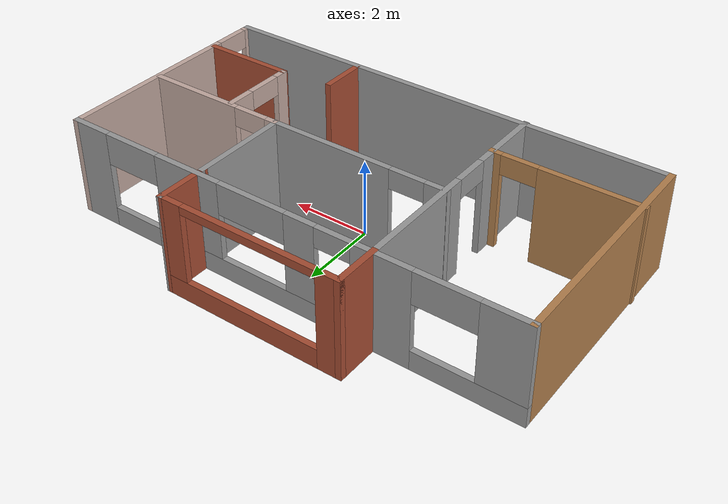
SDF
<?xml version='1.0'?>
<sdf version='1.7'>
  <model name='model'>
    <pose>-0.072799 0.657395 0 0 -0 0</pose>
    <link name='Wall_0'>
      <pose>0.019799 2.41161 0 0 -0 3.14159</pose>
      <visual name='Wall_0_Visual_0'>
        <pose>-5.46206 0 1.25 0 -0 0</pose>
        <geometry>
          <box>
            <size>1.07588 0.15 2.5</size>
          </box>
        </geometry>
        <material>
          <script>
            <uri>file://media/materials/scripts/gazebo.material</uri>
            <name>Gazebo/Grey</name>
          </script>
          <ambient>1 1 1 1</ambient>
        </material>
        <meta>
          <layer>0</layer>
        </meta>
      </visual>
      <collision name='Wall_0_Collision_0'>
        <geometry>
          <box>
            <size>1.07588 0.15 2.5</size>
          </box>
        </geometry>
        <pose>-5.46206 0 1.25 0 -0 0</pose>
      </collision>
      <visual name='Wall_0_Visual_1'>
        <pose>2.60195 0 1.25 0 -0 0</pose>
        <geometry>
          <box>
            <size>1.45849 0.15 2.5</size>
          </box>
        </geometry>
        <material>
          <script>
            <uri>file://media/materials/scripts/gazebo.material</uri>
            <name>Gazebo/Grey</name>
          </script>
          <ambient>1 1 1 1</ambient>
        </material>
        <meta>
          <layer>0</layer>
        </meta>
      </visual>
      <collision name='Wall_0_Collision_1'>
        <geometry>
          <box>
            <size>1.45849 0.15 2.5</size>
          </box>
        </geometry>
        <pose>2.60195 0 1.25 0 -0 0</pose>
      </collision>
      <visual name='Wall_0_Visual_2'>
        <pose>-1.97571 0 0.25 0 -0 0</pose>
        <geometry>
          <box>
            <size>5.89682 0.15 0.5</size>
          </box>
        </geometry>
        <material>
          <script>
            <uri>file://media/materials/scripts/gazebo.material</uri>
            <name>Gazebo/Grey</name>
          </script>
          <ambient>1 1 1 1</ambient>
        </material>
        <meta>
          <layer>0</layer>
        </meta>
      </visual>
      <collision name='Wall_0_Collision_2'>
        <geometry>
          <box>
            <size>5.89682 0.15 0.5</size>
          </box>
        </geometry>
        <pose>-1.97571 0 0.25 0 -0 0</pose>
      </collision>
      <visual name='Wall_0_Visual_3'>
        <pose>4.6656 0 0.25 0 -0 0</pose>
        <geometry>
          <box>
            <size>2.66881 0.15 0.5</size>
          </box>
        </geometry>
        <material>
          <script>
            <uri>file://media/materials/scripts/gazebo.material</uri>
            <name>Gazebo/Grey</name>
          </script>
          <ambient>1 1 1 1</ambient>
        </material>
        <meta>
          <layer>0</layer>
        </meta>
      </visual>
      <collision name='Wall_0_Collision_3'>
        <geometry>
          <box>
            <size>2.66881 0.15 0.5</size>
          </box>
        </geometry>
        <pose>4.6656 0 0.25 0 -0 0</pose>
      </collision>
      <visual name='Wall_0_Visual_4'>
        <pose>-2.5176 0 1.5 0 -0 0</pose>
        <geometry>
          <box>
            <size>1.81303 0.15 2</size>
          </box>
        </geometry>
        <material>
          <script>
            <uri>file://media/materials/scripts/gazebo.material</uri>
            <name>Gazebo/Grey</name>
          </script>
          <ambient>1 1 1 1</ambient>
        </material>
        <meta>
          <layer>0</layer>
        </meta>
      </visual>
      <collision name='Wall_0_Collision_4'>
        <geometry>
          <box>
            <size>1.81303 0.15 2</size>
          </box>
        </geometry>
        <pose>-2.5176 0 1.5 0 -0 0</pose>
      </collision>
      <visual name='Wall_0_Visual_5'>
        <pose>0.580808 0 1.5 0 -0 0</pose>
        <geometry>
          <box>
            <size>0.783788 0.15 2</size>
          </box>
        </geometry>
        <material>
          <script>
            <uri>file://media/materials/scripts/gazebo.material</uri>
            <name>Gazebo/Grey</name>
          </script>
          <ambient>1 1 1 1</ambient>
        </material>
        <meta>
          <layer>0</layer>
        </meta>
      </visual>
      <collision name='Wall_0_Collision_5'>
        <geometry>
          <box>
            <size>0.783788 0.15 2</size>
          </box>
        </geometry>
        <pose>0.580808 0 1.5 0 -0 0</pose>
      </collision>
      <visual name='Wall_0_Visual_6'>
        <pose>0.580808 0 1.5 0 -0 0</pose>
        <geometry>
          <box>
            <size>0.783788 0.15 2</size>
          </box>
        </geometry>
        <material>
          <script>
            <uri>file://media/materials/scripts/gazebo.material</uri>
            <name>Gazebo/Grey</name>
          </script>
          <ambient>1 1 1 1</ambient>
        </material>
        <meta>
          <layer>0</layer>
        </meta>
      </visual>
      <collision name='Wall_0_Collision_6'>
        <geometry>
          <box>
            <size>0.783788 0.15 2</size>
          </box>
        </geometry>
        <pose>0.580808 0 1.5 0 -0 0</pose>
      </collision>
      <visual name='Wall_0_Visual_7'>
        <pose>5.4156 0 1.5 0 -0 0</pose>
        <geometry>
          <box>
            <size>1.16881 0.15 2</size>
          </box>
        </geometry>
        <material>
          <script>
            <uri>file://media/materials/scripts/gazebo.material</uri>
            <name>Gazebo/Grey</name>
          </script>
          <ambient>1 1 1 1</ambient>
        </material>
        <meta>
          <layer>0</layer>
        </meta>
      </visual>
      <collision name='Wall_0_Collision_7'>
        <geometry>
          <box>
            <size>1.16881 0.15 2</size>
          </box>
        </geometry>
        <pose>5.4156 0 1.5 0 -0 0</pose>
      </collision>
      <visual name='Wall_0_Visual_8'>
        <pose>-4.17412 0 2.1 0 -0 0</pose>
        <geometry>
          <box>
            <size>1.5 0.15 0.8</size>
          </box>
        </geometry>
        <material>
          <script>
            <uri>file://media/materials/scripts/gazebo.material</uri>
            <name>Gazebo/Grey</name>
          </script>
          <ambient>1 1 1 1</ambient>
        </material>
        <meta>
          <layer>0</layer>
        </meta>
      </visual>
      <collision name='Wall_0_Collision_8'>
        <geometry>
          <box>
            <size>1.5 0.15 0.8</size>
          </box>
        </geometry>
        <pose>-4.17412 0 2.1 0 -0 0</pose>
      </collision>
      <visual name='Wall_0_Visual_9'>
        <pose>4.08119 0 2.1 0 -0 0</pose>
        <geometry>
          <box>
            <size>1.5 0.15 0.8</size>
          </box>
        </geometry>
        <material>
          <script>
            <uri>file://media/materials/scripts/gazebo.material</uri>
            <name>Gazebo/Grey</name>
          </script>
          <ambient>1 1 1 1</ambient>
        </material>
        <meta>
          <layer>0</layer>
        </meta>
      </visual>
      <collision name='Wall_0_Collision_9'>
        <geometry>
          <box>
            <size>1.5 0.15 0.8</size>
          </box>
        </geometry>
        <pose>4.08119 0 2.1 0 -0 0</pose>
      </collision>
      <visual name='Wall_0_Visual_10'>
        <pose>-0.711086 0 2.1 0 -0 0</pose>
        <geometry>
          <box>
            <size>1.8 0.15 0.8</size>
          </box>
        </geometry>
        <material>
          <script>
            <uri>file://media/materials/scripts/gazebo.material</uri>
            <name>Gazebo/Grey</name>
          </script>
          <ambient>1 1 1 1</ambient>
        </material>
        <meta>
          <layer>0</layer>
        </meta>
      </visual>
      <collision name='Wall_0_Collision_10'>
        <geometry>
          <box>
            <size>1.8 0.15 0.8</size>
          </box>
        </geometry>
        <pose>-0.711086 0 2.1 0 -0 0</pose>
      </collision>
      <visual name='Wall_0_Visual_11'>
        <pose>1.4227 0 2.25 0 -0 0</pose>
        <geometry>
          <box>
            <size>0.9 0.15 0.5</size>
          </box>
        </geometry>
        <material>
          <script>
            <uri>file://media/materials/scripts/gazebo.material</uri>
            <name>Gazebo/Grey</name>
          </script>
          <ambient>1 1 1 1</ambient>
        </material>
        <meta>
          <layer>0</layer>
        </meta>
      </visual>
      <collision name='Wall_0_Collision_11'>
        <geometry>
          <box>
            <size>0.9 0.15 0.5</size>
          </box>
        </geometry>
        <pose>1.4227 0 2.25 0 -0 0</pose>
      </collision>
      <visual name='Wall_0_Visual_12'>
        <pose>1.4227 0 2.25 0 -0 0</pose>
        <geometry>
          <box>
            <size>0.9 0.15 0.5</size>
          </box>
        </geometry>
        <material>
          <script>
            <uri>file://media/materials/scripts/gazebo.material</uri>
            <name>Gazebo/Grey</name>
          </script>
          <ambient>1 1 1 1</ambient>
        </material>
        <meta>
          <layer>0</layer>
        </meta>
      </visual>
      <collision name='Wall_0_Collision_12'>
        <geometry>
          <box>
            <size>0.9 0.15 0.5</size>
          </box>
        </geometry>
        <pose>1.4227 0 2.25 0 -0 0</pose>
      </collision>
    </link>
    <link name='Wall_15'>
      <pose>3.63468 -1.16614 0 0 -0 -1.5708</pose>
      <visual name='Wall_15_Visual_0'>
        <pose>-0.627818 0 1.25 0 -0 0</pose>
        <geometry>
          <box>
            <size>0.744364 0.15 2.5</size>
          </box>
        </geometry>
        <material>
          <script>
            <uri>file://media/materials/scripts/gazebo.material</uri>
            <name>Gazebo/Grey</name>
          </script>
          <ambient>0.760784 0.662745 0.627451 1</ambient>
        </material>
        <meta>
          <layer>0</layer>
        </meta>
      </visual>
      <collision name='Wall_15_Collision_0'>
        <geometry>
          <box>
            <size>0.744364 0.15 2.5</size>
          </box>
        </geometry>
        <pose>-0.627818 0 1.25 0 -0 0</pose>
      </collision>
      <visual name='Wall_15_Visual_1'>
        <pose>0.822182 0 1.25 0 -0 0</pose>
        <geometry>
          <box>
            <size>0.355636 0.15 2.5</size>
          </box>
        </geometry>
        <material>
          <script>
            <uri>file://media/materials/scripts/gazebo.material</uri>
            <name>Gazebo/Grey</name>
          </script>
          <ambient>0.760784 0.662745 0.627451 1</ambient>
        </material>
        <meta>
          <layer>0</layer>
        </meta>
      </visual>
      <collision name='Wall_15_Collision_1'>
        <geometry>
          <box>
            <size>0.355636 0.15 2.5</size>
          </box>
        </geometry>
        <pose>0.822182 0 1.25 0 -0 0</pose>
      </collision>
      <visual name='Wall_15_Visual_2'>
        <pose>0.194364 0 2.25 0 -0 0</pose>
        <geometry>
          <box>
            <size>0.9 0.15 0.5</size>
          </box>
        </geometry>
        <material>
          <script>
            <uri>file://media/materials/scripts/gazebo.material</uri>
            <name>Gazebo/Grey</name>
          </script>
          <ambient>0.760784 0.662745 0.627451 1</ambient>
        </material>
        <meta>
          <layer>0</layer>
        </meta>
      </visual>
      <collision name='Wall_15_Collision_2'>
        <geometry>
          <box>
            <size>0.9 0.15 0.5</size>
          </box>
        </geometry>
        <pose>0.194364 0 2.25 0 -0 0</pose>
      </collision>
    </link>
    <link name='Wall_16'>
      <collision name='Wall_16_Collision'>
        <geometry>
          <box>
            <size>2.45988 0.15 2.5</size>
          </box>
        </geometry>
        <pose>0 0 1.25 0 -0 0</pose>
      </collision>
      <visual name='Wall_16_Visual'>
        <pose>0 0 1.25 0 -0 0</pose>
        <geometry>
          <box>
            <size>2.45988 0.15 2.5</size>
          </box>
        </geometry>
        <material>
          <script>
            <uri>file://media/materials/scripts/gazebo.material</uri>
            <name>Gazebo/Bricks</name>
          </script>
          <ambient>1 1 1 1</ambient>
        </material>
        <meta>
          <layer>0</layer>
        </meta>
      </visual>
      <pose>4.78962 -2.12612 0 0 -0 0</pose>
    </link>
    <link name='Wall_2'>
      <collision name='Wall_2_Collision'>
        <geometry>
          <box>
            <size>6 0.15 2.5</size>
          </box>
        </geometry>
        <pose>0 0 1.25 0 -0 0</pose>
      </collision>
      <visual name='Wall_2_Visual'>
        <pose>0 0 1.25 0 -0 0</pose>
        <geometry>
          <box>
            <size>6 0.15 2.5</size>
          </box>
        </geometry>
        <material>
          <script>
            <uri>file://media/materials/scripts/gazebo.material</uri>
            <name>Gazebo/Wood</name>
          </script>
          <ambient>1 1 1 1</ambient>
        </material>
        <meta>
          <layer>0</layer>
        </meta>
      </visual>
      <pose>-5.9052 -0.513395 0 0 -0 -1.5708</pose>
    </link>
    <link name='Wall_24'>
      <collision name='Wall_24_Collision'>
        <geometry>
          <box>
            <size>2.5 0.15 2.5</size>
          </box>
        </geometry>
        <pose>0 0 1.25 0 -0 0</pose>
      </collision>
      <visual name='Wall_24_Visual'>
        <pose>0 0 1.25 0 -0 0</pose>
        <geometry>
          <box>
            <size>2.5 0.15 2.5</size>
          </box>
        </geometry>
        <material>
          <script>
            <uri>file://media/materials/scripts/gazebo.material</uri>
            <name>Gazebo/Grey</name>
          </script>
          <ambient>1 1 1 1</ambient>
        </material>
        <meta>
          <layer>0</layer>
        </meta>
      </visual>
      <pose>2.23564 1.06753 0 0 -0 -1.57093</pose>
    </link>
    <link name='Wall_26'>
      <collision name='Wall_26_Collision'>
        <geometry>
          <box>
            <size>1.25 0.15 2.5</size>
          </box>
        </geometry>
        <pose>0 0 1.25 0 -0 0</pose>
      </collision>
      <visual name='Wall_26_Visual'>
        <pose>0 0 1.25 0 -0 0</pose>
        <geometry>
          <box>
            <size>1.25 0.15 2.5</size>
          </box>
        </geometry>
        <material>
          <script>
            <uri>file://media/materials/scripts/gazebo.material</uri>
            <name>Gazebo/Bricks</name>
          </script>
          <ambient>1 1 1 1</ambient>
        </material>
        <meta>
          <layer>0</layer>
        </meta>
      </visual>
      <pose>2.34042 -2.86011 0 0 -0 -1.5708</pose>
    </link>
    <link name='Wall_28'>
      <collision name='Wall_28_Collision'>
        <geometry>
          <box>
            <size>1.25 0.15 2.5</size>
          </box>
        </geometry>
        <pose>0 0 1.25 0 -0 0</pose>
      </collision>
      <visual name='Wall_28_Visual'>
        <pose>0 0 1.25 0 -0 0</pose>
        <geometry>
          <box>
            <size>1.25 0.15 2.5</size>
          </box>
        </geometry>
        <material>
          <script>
            <uri>file://media/materials/scripts/gazebo.material</uri>
            <name>Gazebo/Bricks</name>
          </script>
          <ambient>1 1 1 1</ambient>
        </material>
        <meta>
          <layer>0</layer>
        </meta>
      </visual>
      <pose>-2.3542 2.92461 0 0 -0 1.5708</pose>
    </link>
    <link name='Wall_29'>
      <pose>-0.054201 3.4746 0 0 -0 0</pose>
      <visual name='Wall_29_Visual_0'>
        <pose>-2.0721 0 1.25 0 -0 0</pose>
        <geometry>
          <box>
            <size>0.605802 0.15 2.5</size>
          </box>
        </geometry>
        <material>
          <script>
            <uri>file://media/materials/scripts/gazebo.material</uri>
            <name>Gazebo/Bricks</name>
          </script>
          <ambient>1 1 1 1</ambient>
        </material>
        <meta>
          <layer>0</layer>
        </meta>
      </visual>
      <collision name='Wall_29_Collision_0'>
        <geometry>
          <box>
            <size>0.605802 0.15 2.5</size>
          </box>
        </geometry>
        <pose>-2.0721 0 1.25 0 -0 0</pose>
      </collision>
      <visual name='Wall_29_Visual_1'>
        <pose>0.302901 0 0.25 0 -0 0</pose>
        <geometry>
          <box>
            <size>4.1442 0.15 0.5</size>
          </box>
        </geometry>
        <material>
          <script>
            <uri>file://media/materials/scripts/gazebo.material</uri>
            <name>Gazebo/Bricks</name>
          </script>
          <ambient>1 1 1 1</ambient>
        </material>
        <meta>
          <layer>0</layer>
        </meta>
      </visual>
      <collision name='Wall_29_Collision_1'>
        <geometry>
          <box>
            <size>4.1442 0.15 0.5</size>
          </box>
        </geometry>
        <pose>0.302901 0 0.25 0 -0 0</pose>
      </collision>
      <visual name='Wall_29_Visual_2'>
        <pose>2.0529 0 1.5 0 -0 0</pose>
        <geometry>
          <box>
            <size>0.644198 0.15 2</size>
          </box>
        </geometry>
        <material>
          <script>
            <uri>file://media/materials/scripts/gazebo.material</uri>
            <name>Gazebo/Bricks</name>
          </script>
          <ambient>1 1 1 1</ambient>
        </material>
        <meta>
          <layer>0</layer>
        </meta>
      </visual>
      <collision name='Wall_29_Collision_2'>
        <geometry>
          <box>
            <size>0.644198 0.15 2</size>
          </box>
        </geometry>
        <pose>2.0529 0 1.5 0 -0 0</pose>
      </collision>
      <visual name='Wall_29_Visual_3'>
        <pose>-0.019198 0 2.4 0 -0 0</pose>
        <geometry>
          <box>
            <size>3.5 0.15 0.2</size>
          </box>
        </geometry>
        <material>
          <script>
            <uri>file://media/materials/scripts/gazebo.material</uri>
            <name>Gazebo/Bricks</name>
          </script>
          <ambient>1 1 1 1</ambient>
        </material>
        <meta>
          <layer>0</layer>
        </meta>
      </visual>
      <collision name='Wall_29_Collision_3'>
        <geometry>
          <box>
            <size>3.5 0.15 0.2</size>
          </box>
        </geometry>
        <pose>-0.019198 0 2.4 0 -0 0</pose>
      </collision>
    </link>
    <link name='Wall_3'>
      <collision name='Wall_3_Collision'>
        <geometry>
          <box>
            <size>12 0.15 2.5</size>
          </box>
        </geometry>
        <pose>0 0 1.25 0 -0 0</pose>
      </collision>
      <visual name='Wall_3_Visual'>
        <pose>0 0 1.25 0 -0 0</pose>
        <geometry>
          <box>
            <size>12 0.15 2.5</size>
          </box>
        </geometry>
        <material>
          <script>
            <uri>file://media/materials/scripts/gazebo.material</uri>
            <name>Gazebo/Grey</name>
          </script>
          <ambient>1 1 1 1</ambient>
        </material>
        <meta>
          <layer>0</layer>
        </meta>
      </visual>
      <pose>0.019799 -3.43839 0 0 -0 0</pose>
    </link>
    <link name='Wall_30'>
      <collision name='Wall_30_Collision'>
        <geometry>
          <box>
            <size>0.15 0.15 2.5</size>
          </box>
        </geometry>
        <pose>0 0 1.25 0 -0 0</pose>
      </collision>
      <visual name='Wall_30_Visual'>
        <pose>0 0 1.25 0 -0 0</pose>
        <geometry>
          <box>
            <size>0.15 0.15 2.5</size>
          </box>
        </geometry>
        <material>
          <script>
            <uri>file://media/materials/scripts/gazebo.material</uri>
            <name>Gazebo/Grey</name>
          </script>
          <ambient>1 1 1 1</ambient>
        </material>
        <meta>
          <layer>0</layer>
        </meta>
      </visual>
      <pose>2.2458 3.4746 0 0 -0 0</pose>
    </link>
    <link name='Wall_32'>
      <collision name='Wall_32_Collision'>
        <geometry>
          <box>
            <size>1.38231 0.15 2.5</size>
          </box>
        </geometry>
        <pose>0 0 1.25 0 -0 0</pose>
      </collision>
      <visual name='Wall_32_Visual'>
        <pose>0 0 1.25 0 -0 0</pose>
        <geometry>
          <box>
            <size>1.38231 0.15 2.5</size>
          </box>
        </geometry>
        <material>
          <script>
            <uri>file://media/materials/scripts/gazebo.material</uri>
            <name>Gazebo/Bricks</name>
          </script>
          <ambient>1 1 1 1</ambient>
        </material>
        <meta>
          <layer>0</layer>
        </meta>
      </visual>
      <pose>2.2408 2.8586 0 0 -0 -1.57891</pose>
    </link>
    <link name='Wall_34'>
      <pose>4.07341 -0.17118 0 0 -0 3.14159</pose>
      <visual name='Wall_34_Visual_0'>
        <pose>-0.610825 0 1.25 0 -0 0</pose>
        <geometry>
          <box>
            <size>2.52835 0.15 2.5</size>
          </box>
        </geometry>
        <material>
          <script>
            <uri>file://media/materials/scripts/gazebo.material</uri>
            <name>Gazebo/Grey</name>
          </script>
          <ambient>0.760784 0.662745 0.627451 1</ambient>
        </material>
        <meta>
          <layer>0</layer>
        </meta>
      </visual>
      <collision name='Wall_34_Collision_0'>
        <geometry>
          <box>
            <size>2.52835 0.15 2.5</size>
          </box>
        </geometry>
        <pose>-0.610825 0 1.25 0 -0 0</pose>
      </collision>
      <visual name='Wall_34_Visual_1'>
        <pose>1.71418 0 1.25 0 -0 0</pose>
        <geometry>
          <box>
            <size>0.32165 0.15 2.5</size>
          </box>
        </geometry>
        <material>
          <script>
            <uri>file://media/materials/scripts/gazebo.material</uri>
            <name>Gazebo/Grey</name>
          </script>
          <ambient>0.760784 0.662745 0.627451 1</ambient>
        </material>
        <meta>
          <layer>0</layer>
        </meta>
      </visual>
      <collision name='Wall_34_Collision_1'>
        <geometry>
          <box>
            <size>0.32165 0.15 2.5</size>
          </box>
        </geometry>
        <pose>1.71418 0 1.25 0 -0 0</pose>
      </collision>
      <visual name='Wall_34_Visual_2'>
        <pose>1.10335 0 2.25 0 -0 0</pose>
        <geometry>
          <box>
            <size>0.9 0.15 0.5</size>
          </box>
        </geometry>
        <material>
          <script>
            <uri>file://media/materials/scripts/gazebo.material</uri>
            <name>Gazebo/Grey</name>
          </script>
          <ambient>0.760784 0.662745 0.627451 1</ambient>
        </material>
        <meta>
          <layer>0</layer>
        </meta>
      </visual>
      <collision name='Wall_34_Collision_2'>
        <geometry>
          <box>
            <size>0.9 0.15 0.5</size>
          </box>
        </geometry>
        <pose>1.10335 0 2.25 0 -0 0</pose>
      </collision>
    </link>
    <link name='Wall_35'>
      <pose>-0.06157 -0.17118 0 0 -0 3.14159</pose>
      <visual name='Wall_35_Visual_0'>
        <pose>-0.742057 0 1.25 0 -0 0</pose>
        <geometry>
          <box>
            <size>3.26589 0.15 2.5</size>
          </box>
        </geometry>
        <material>
          <script>
            <uri>file://media/materials/scripts/gazebo.material</uri>
            <name>Gazebo/Grey</name>
          </script>
          <ambient>1 1 1 1</ambient>
        </material>
        <meta>
          <layer>0</layer>
        </meta>
      </visual>
      <collision name='Wall_35_Collision_0'>
        <geometry>
          <box>
            <size>3.26589 0.15 2.5</size>
          </box>
        </geometry>
        <pose>-0.742057 0 1.25 0 -0 0</pose>
      </collision>
      <visual name='Wall_35_Visual_1'>
        <pose>2.08294 0 1.25 0 -0 0</pose>
        <geometry>
          <box>
            <size>0.584114 0.15 2.5</size>
          </box>
        </geometry>
        <material>
          <script>
            <uri>file://media/materials/scripts/gazebo.material</uri>
            <name>Gazebo/Grey</name>
          </script>
          <ambient>1 1 1 1</ambient>
        </material>
        <meta>
          <layer>0</layer>
        </meta>
      </visual>
      <collision name='Wall_35_Collision_1'>
        <geometry>
          <box>
            <size>0.584114 0.15 2.5</size>
          </box>
        </geometry>
        <pose>2.08294 0 1.25 0 -0 0</pose>
      </collision>
      <visual name='Wall_35_Visual_2'>
        <pose>1.34089 0 2.25 0 -0 0</pose>
        <geometry>
          <box>
            <size>0.9 0.15 0.5</size>
          </box>
        </geometry>
        <material>
          <script>
            <uri>file://media/materials/scripts/gazebo.material</uri>
            <name>Gazebo/Grey</name>
          </script>
          <ambient>1 1 1 1</ambient>
        </material>
        <meta>
          <layer>0</layer>
        </meta>
      </visual>
      <collision name='Wall_35_Collision_2'>
        <geometry>
          <box>
            <size>0.9 0.15 0.5</size>
          </box>
        </geometry>
        <pose>1.34089 0 2.25 0 -0 0</pose>
      </collision>
    </link>
    <link name='Wall_4'>
      <pose>5.9448 -0.513395 0 0 -0 1.5708</pose>
      <visual name='Wall_4_Visual_0'>
        <pose>-2.8658 0 1.25 0 -0 0</pose>
        <geometry>
          <box>
            <size>0.268399 0.15 2.5</size>
          </box>
        </geometry>
        <material>
          <script>
            <uri>file://media/materials/scripts/gazebo.material</uri>
            <name>Gazebo/Grey</name>
          </script>
          <ambient>0.760784 0.662745 0.627451 1</ambient>
        </material>
        <meta>
          <layer>0</layer>
        </meta>
      </visual>
      <collision name='Wall_4_Collision_0'>
        <geometry>
          <box>
            <size>0.268399 0.15 2.5</size>
          </box>
        </geometry>
        <pose>-2.8658 0 1.25 0 -0 0</pose>
      </collision>
      <visual name='Wall_4_Visual_1'>
        <pose>0.584199 0 1.25 0 -0 0</pose>
        <geometry>
          <box>
            <size>4.8316 0.15 2.5</size>
          </box>
        </geometry>
        <material>
          <script>
            <uri>file://media/materials/scripts/gazebo.material</uri>
            <name>Gazebo/Grey</name>
          </script>
          <ambient>0.760784 0.662745 0.627451 1</ambient>
        </material>
        <meta>
          <layer>0</layer>
        </meta>
      </visual>
      <collision name='Wall_4_Collision_1'>
        <geometry>
          <box>
            <size>4.8316 0.15 2.5</size>
          </box>
        </geometry>
        <pose>0.584199 0 1.25 0 -0 0</pose>
      </collision>
      <visual name='Wall_4_Visual_2'>
        <pose>-2.2816 0 2.25 0 -0 0</pose>
        <geometry>
          <box>
            <size>0.9 0.15 0.5</size>
          </box>
        </geometry>
        <material>
          <script>
            <uri>file://media/materials/scripts/gazebo.material</uri>
            <name>Gazebo/Grey</name>
          </script>
          <ambient>0.760784 0.662745 0.627451 1</ambient>
        </material>
        <meta>
          <layer>0</layer>
        </meta>
      </visual>
      <collision name='Wall_4_Collision_2'>
        <geometry>
          <box>
            <size>0.9 0.15 0.5</size>
          </box>
        </geometry>
        <pose>-2.2816 0 2.25 0 -0 0</pose>
      </collision>
    </link>
    <link name='Wall_6'>
      <pose>-2.35411 -0.550342 0 0 -0 -1.57076</pose>
      <visual name='Wall_6_Visual_0'>
        <pose>-1.44227 0 1.25 0 -0 0</pose>
        <geometry>
          <box>
            <size>3.11546 0.15 2.5</size>
          </box>
        </geometry>
        <material>
          <script>
            <uri>file://media/materials/scripts/gazebo.material</uri>
            <name>Gazebo/Grey</name>
          </script>
          <ambient>1 1 1 1</ambient>
        </material>
        <meta>
          <layer>0</layer>
        </meta>
      </visual>
      <collision name='Wall_6_Collision_0'>
        <geometry>
          <box>
            <size>3.11546 0.15 2.5</size>
          </box>
        </geometry>
        <pose>-1.44227 0 1.25 0 -0 0</pose>
      </collision>
      <visual name='Wall_6_Visual_1'>
        <pose>2.00773 0 1.25 0 -0 0</pose>
        <geometry>
          <box>
            <size>1.98454 0.15 2.5</size>
          </box>
        </geometry>
        <material>
          <script>
            <uri>file://media/materials/scripts/gazebo.material</uri>
            <name>Gazebo/Grey</name>
          </script>
          <ambient>1 1 1 1</ambient>
        </material>
        <meta>
          <layer>0</layer>
        </meta>
      </visual>
      <collision name='Wall_6_Collision_1'>
        <geometry>
          <box>
            <size>1.98454 0.15 2.5</size>
          </box>
        </geometry>
        <pose>2.00773 0 1.25 0 -0 0</pose>
      </collision>
      <visual name='Wall_6_Visual_2'>
        <pose>0.565456 0 2.25 0 -0 0</pose>
        <geometry>
          <box>
            <size>0.9 0.15 0.5</size>
          </box>
        </geometry>
        <material>
          <script>
            <uri>file://media/materials/scripts/gazebo.material</uri>
            <name>Gazebo/Grey</name>
          </script>
          <ambient>1 1 1 1</ambient>
        </material>
        <meta>
          <layer>0</layer>
        </meta>
      </visual>
      <collision name='Wall_6_Collision_2'>
        <geometry>
          <box>
            <size>0.9 0.15 0.5</size>
          </box>
        </geometry>
        <pose>0.565456 0 2.25 0 -0 0</pose>
      </collision>
    </link>
    <link name='Wall_8'>
      <pose>-4.1448 -2.06168 0 0 -0 0</pose>
      <visual name='Wall_8_Visual_0'>
        <pose>-0.613361 0 1.25 0 -0 0</pose>
        <geometry>
          <box>
            <size>2.52328 0.15 2.5</size>
          </box>
        </geometry>
        <material>
          <script>
            <uri>file://media/materials/scripts/gazebo.material</uri>
            <name>Gazebo/Wood</name>
          </script>
          <ambient>1 1 1 1</ambient>
        </material>
        <meta>
          <layer>0</layer>
        </meta>
      </visual>
      <collision name='Wall_8_Collision_0'>
        <geometry>
          <box>
            <size>2.52328 0.15 2.5</size>
          </box>
        </geometry>
        <pose>-0.613361 0 1.25 0 -0 0</pose>
      </collision>
      <visual name='Wall_8_Visual_1'>
        <pose>1.71164 0 1.25 0 -0 0</pose>
        <geometry>
          <box>
            <size>0.326722 0.15 2.5</size>
          </box>
        </geometry>
        <material>
          <script>
            <uri>file://media/materials/scripts/gazebo.material</uri>
            <name>Gazebo/Wood</name>
          </script>
          <ambient>1 1 1 1</ambient>
        </material>
        <meta>
          <layer>0</layer>
        </meta>
      </visual>
      <collision name='Wall_8_Collision_1'>
        <geometry>
          <box>
            <size>0.326722 0.15 2.5</size>
          </box>
        </geometry>
        <pose>1.71164 0 1.25 0 -0 0</pose>
      </collision>
      <visual name='Wall_8_Visual_2'>
        <pose>1.09828 0 2.25 0 -0 0</pose>
        <geometry>
          <box>
            <size>0.9 0.15 0.5</size>
          </box>
        </geometry>
        <material>
          <script>
            <uri>file://media/materials/scripts/gazebo.material</uri>
            <name>Gazebo/Wood</name>
          </script>
          <ambient>1 1 1 1</ambient>
        </material>
        <meta>
          <layer>0</layer>
        </meta>
      </visual>
      <collision name='Wall_8_Collision_2'>
        <geometry>
          <box>
            <size>0.9 0.15 0.5</size>
          </box>
        </geometry>
        <pose>1.09828 0 2.25 0 -0 0</pose>
      </collision>
    </link>
    <static>1</static>
  </model>
</sdf>
